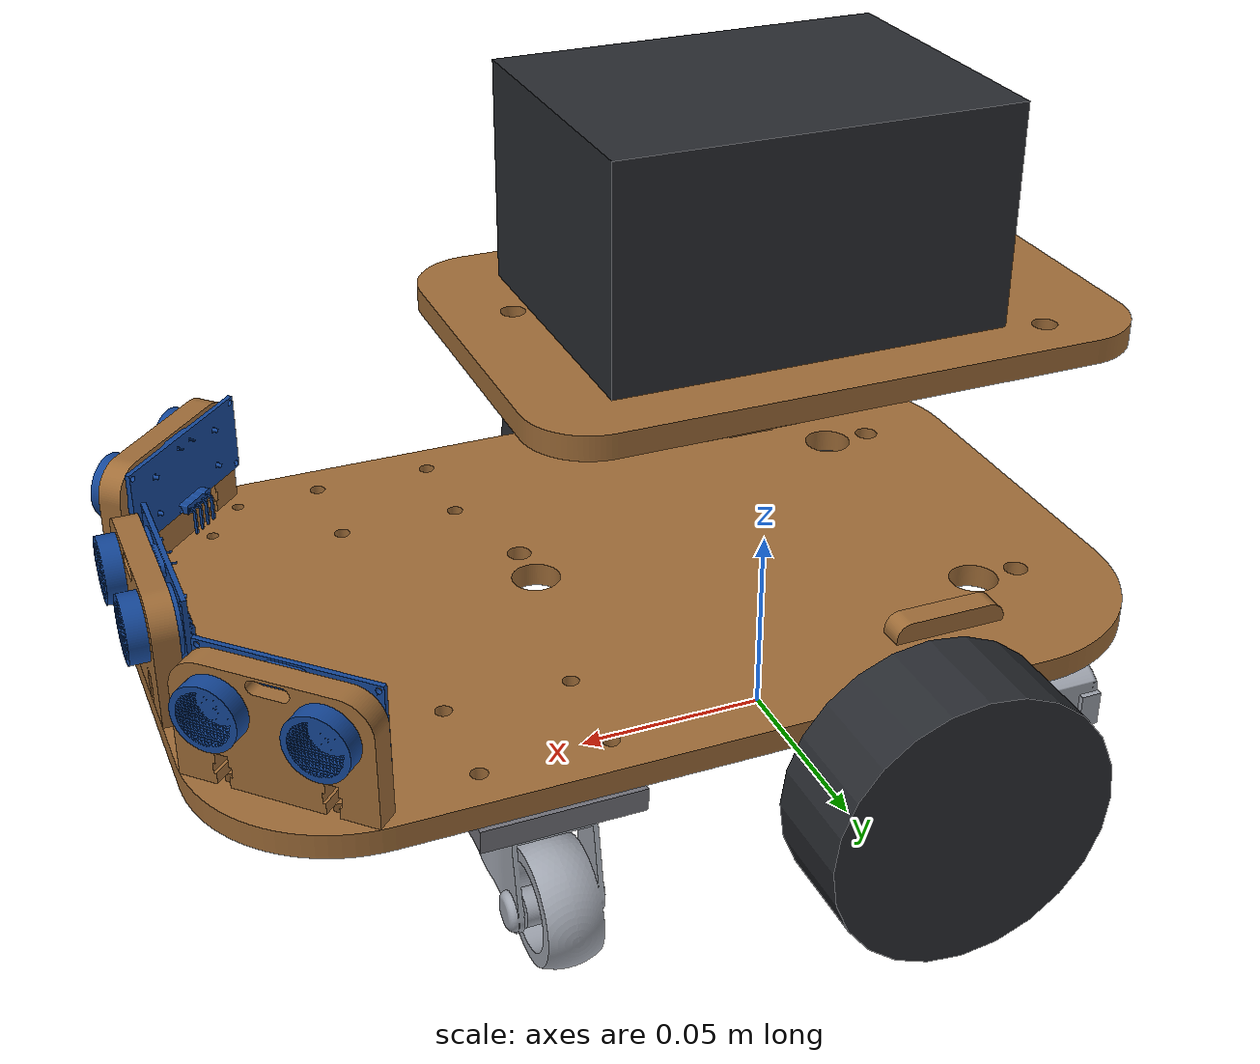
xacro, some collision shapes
<?xml version='1.0' encoding='utf-8'?>
<robot name="rm_bot" xmlns:xacro="http://www.ros.org/wiki/xacro">
  <link name="base_footprint" />
  <link name="base_link">
    <inertial>
      <origin xyz="0.042205 0 0" rpy="0 0 0" />
      <mass value="1.5" />
      <inertia ixx="0.002817" iyy="0.0066170000000000005" izz="0.009425" ixy="0" ixz="0" iyz="0" />
    </inertial>
  </link>
  <joint name="base_joint" type="fixed">
    <parent link="base_footprint" />
    <child link="base_link" />
    <origin xyz="0.000000000 0.000000000 0.048611063" rpy="0 0 0" />
  </joint>
  <link name="cad_part_0">
    <visual>
      <geometry>
        <mesh filename="package://rm_bot_description/meshes/part_00.stl" />
      </geometry>
      <material name="mat_0">
        <color rgba="0.63 0.43 0.22 1" />
      </material>
    </visual>
  </link>
  <joint name="fixed_cad_part_0" type="fixed">
    <parent link="base_link" />
    <child link="cad_part_0" />
    <origin xyz="0.000000000 0.000000000 0.000000000" rpy="0 0 0" />
  </joint>
  <link name="cad_part_1">
    <visual>
      <geometry>
        <mesh filename="package://rm_bot_description/meshes/part_01.stl" />
      </geometry>
      <material name="mat_1">
        <color rgba="0.08 0.28 0.6 1" />
      </material>
    </visual>
  </link>
  <joint name="fixed_cad_part_1" type="fixed">
    <parent link="base_link" />
    <child link="cad_part_1" />
    <origin xyz="0.000000000 0.000000000 0.000000000" rpy="0 0 0" />
  </joint>
  <link name="cad_part_2">
    <visual>
      <geometry>
        <mesh filename="package://rm_bot_description/meshes/part_02.stl" />
      </geometry>
      <material name="mat_2">
        <color rgba="0.63 0.43 0.22 1" />
      </material>
    </visual>
  </link>
  <joint name="fixed_cad_part_2" type="fixed">
    <parent link="base_link" />
    <child link="cad_part_2" />
    <origin xyz="0.000000000 0.000000000 0.000000000" rpy="0 0 0" />
  </joint>
  <link name="cad_part_3">
    <visual>
      <geometry>
        <mesh filename="package://rm_bot_description/meshes/part_03.stl" />
      </geometry>
      <material name="mat_3">
        <color rgba="0.62 0.64 0.68 1" />
      </material>
    </visual>
    <collision>
      <origin xyz="0.083804958 -0.060250002 -0.023000001" />
      <geometry>
        <sphere radius="0.02" />
      </geometry>
    </collision>
  </link>
  <joint name="fixed_cad_part_3" type="fixed">
    <parent link="base_link" />
    <child link="cad_part_3" />
    <origin xyz="0 0 -0.005611062" rpy="0 0 0" />
  </joint>
  <gazebo reference="cad_part_3">
    <mu1>0.01</mu1>
    <mu2>0.01</mu2>
  </gazebo>
  <link name="cad_part_4">
    <visual>
      <geometry>
        <mesh filename="package://rm_bot_description/meshes/part_04.stl" />
      </geometry>
      <material name="mat_4">
        <color rgba="0.08 0.28 0.6 1" />
      </material>
    </visual>
  </link>
  <joint name="fixed_cad_part_4" type="fixed">
    <parent link="base_link" />
    <child link="cad_part_4" />
    <origin xyz="0.000000000 0.000000000 0.000000000" rpy="0 0 0" />
  </joint>
  <link name="cad_part_5">
    <visual>
      <geometry>
        <mesh filename="package://rm_bot_description/meshes/part_05.stl" />
      </geometry>
      <material name="mat_5">
        <color rgba="0.63 0.43 0.22 1" />
      </material>
    </visual>
  </link>
  <joint name="fixed_cad_part_5" type="fixed">
    <parent link="base_link" />
    <child link="cad_part_5" />
    <origin xyz="0.000000000 0.000000000 0.000000000" rpy="0 0 0" />
  </joint>
  <link name="cad_part_6">
    <visual>
      <geometry>
        <mesh filename="package://rm_bot_description/meshes/part_06.stl" />
      </geometry>
      <material name="mat_6">
        <color rgba="0.63 0.43 0.22 1" />
      </material>
    </visual>
    <collision>
      <origin xyz="0.002204980 -0.000000001 0.066000000" />
      <geometry>
        <box size="0.149999999 0.100000001 0.005999997" />
      </geometry>
    </collision>
  </link>
  <joint name="fixed_cad_part_6" type="fixed">
    <parent link="base_link" />
    <child link="cad_part_6" />
    <origin xyz="0.000000000 0.000000000 0.000000000" rpy="0 0 0" />
  </joint>
  <link name="cad_part_7">
    <visual>
      <geometry>
        <mesh filename="package://rm_bot_description/meshes/part_07.stl" />
      </geometry>
      <material name="mat_7">
        <color rgba="0.62 0.64 0.68 1" />
      </material>
    </visual>
    <collision>
      <origin xyz="0.083805002 0.060250000 -0.023000001" />
      <geometry>
        <sphere radius="0.02" />
      </geometry>
    </collision>
  </link>
  <joint name="fixed_cad_part_7" type="fixed">
    <parent link="base_link" />
    <child link="cad_part_7" />
    <origin xyz="0 0 -0.005611062" rpy="0 0 0" />
  </joint>
  <gazebo reference="cad_part_7">
    <mu1>0.01</mu1>
    <mu2>0.01</mu2>
  </gazebo>
  <link name="cad_part_8">
    <visual>
      <geometry>
        <mesh filename="package://rm_bot_description/meshes/part_08.stl" />
      </geometry>
      <material name="mat_8">
        <color rgba="0.62 0.64 0.68 1" />
      </material>
    </visual>
  </link>
  <joint name="fixed_cad_part_8" type="fixed">
    <parent link="base_link" />
    <child link="cad_part_8" />
    <origin xyz="0.000000000 0.000000000 0.000000000" rpy="0 0 0" />
  </joint>
  <link name="left_wheel_link">
    <visual>
      <geometry>
        <mesh filename="package://rm_bot_description/meshes/part_09.stl" />
      </geometry>
      <material name="mat_9">
        <color rgba="0.16 0.17 0.19 1" />
      </material>
    </visual>
    <collision>
      <geometry>
        <cylinder radius="0.03446087334305048" length="0.025" />
      </geometry>
      <origin rpy="1.57079632679 0 0" />
    </collision>
    <inertial>
      <mass value="0.12" />
      <inertia ixx="5.3752071662630694e-05" iyy="9.500414332526137e-05" izz="5.3752071662630694e-05" ixy="0" ixz="0" iyz="0" />
    </inertial>
  </link>
  <joint name="left_wheel_joint" type="continuous">
    <parent link="base_link" />
    <child link="left_wheel_link" />
    <origin xyz="0.000250001 0.091800000 -0.014149810" rpy="0 0 0" />
    <axis xyz="0 1 0" />
    <limit effort="5" velocity="30" />
  </joint>
  <link name="cad_part_10">
    <visual>
      <geometry>
        <mesh filename="package://rm_bot_description/meshes/part_10.stl" />
      </geometry>
      <material name="mat_10">
        <color rgba="0.63 0.43 0.22 1" />
      </material>
    </visual>
  </link>
  <joint name="fixed_cad_part_10" type="fixed">
    <parent link="base_link" />
    <child link="cad_part_10" />
    <origin xyz="0.000000000 0.000000000 0.000000000" rpy="0 0 0" />
  </joint>
  <link name="right_wheel_link">
    <visual>
      <geometry>
        <mesh filename="package://rm_bot_description/meshes/part_11.stl" />
      </geometry>
      <material name="mat_11">
        <color rgba="0.16 0.17 0.19 1" />
      </material>
    </visual>
    <collision>
      <geometry>
        <cylinder radius="0.034460874274373055" length="0.025" />
      </geometry>
      <origin rpy="1.57079632679 0 0" />
    </collision>
    <inertial>
      <mass value="0.12" />
      <inertia ixx="5.375207423016587e-05" iyy="9.500414846033173e-05" izz="5.375207423016587e-05" ixy="0" ixz="0" iyz="0" />
    </inertial>
  </link>
  <joint name="right_wheel_joint" type="continuous">
    <parent link="base_link" />
    <child link="right_wheel_link" />
    <origin xyz="-0.000249999 -0.091800001 -0.014150189" rpy="0 0 0" />
    <axis xyz="0 1 0" />
    <limit effort="5" velocity="30" />
  </joint>
  <link name="cad_part_12">
    <visual>
      <geometry>
        <mesh filename="package://rm_bot_description/meshes/part_12.stl" />
      </geometry>
      <material name="mat_12">
        <color rgba="0.62 0.64 0.68 1" />
      </material>
    </visual>
  </link>
  <joint name="fixed_cad_part_12" type="fixed">
    <parent link="base_link" />
    <child link="cad_part_12" />
    <origin xyz="0.000000000 0.000000000 0.000000000" rpy="0 0 0" />
  </joint>
  <link name="cad_part_13">
    <visual>
      <geometry>
        <mesh filename="package://rm_bot_description/meshes/part_13.stl" />
      </geometry>
      <material name="mat_13">
        <color rgba="0.63 0.43 0.22 1" />
      </material>
    </visual>
    <collision>
      <origin xyz="0.042204979 -0.000000001 0.000000000" />
      <geometry>
        <box size="0.229999997 0.149999999 0.006000000" />
      </geometry>
    </collision>
  </link>
  <joint name="fixed_cad_part_13" type="fixed">
    <parent link="base_link" />
    <child link="cad_part_13" />
    <origin xyz="0.000000000 0.000000000 0.000000000" rpy="0 0 0" />
  </joint>
  <link name="cad_part_14">
    <visual>
      <geometry>
        <mesh filename="package://rm_bot_description/meshes/part_14.stl" />
      </geometry>
      <material name="mat_14">
        <color rgba="0.08 0.28 0.6 1" />
      </material>
    </visual>
  </link>
  <joint name="fixed_cad_part_14" type="fixed">
    <parent link="base_link" />
    <child link="cad_part_14" />
    <origin xyz="0.000000000 0.000000000 0.000000000" rpy="0 0 0" />
  </joint>
  <link name="cad_part_15">
    <visual>
      <geometry>
        <mesh filename="package://rm_bot_description/meshes/part_15.stl" />
      </geometry>
      <material name="mat_15">
        <color rgba="0.63 0.43 0.22 1" />
      </material>
    </visual>
  </link>
  <joint name="fixed_cad_part_15" type="fixed">
    <parent link="base_link" />
    <child link="cad_part_15" />
    <origin xyz="0.000000000 0.000000000 0.000000000" rpy="0 0 0" />
  </joint>
  <link name="cad_part_16">
    <visual>
      <geometry>
        <mesh filename="package://rm_bot_description/meshes/part_16.stl" />
      </geometry>
      <material name="mat_16">
        <color rgba="0.16 0.17 0.19 1" />
      </material>
    </visual>
    <collision>
      <origin xyz="0.008059205 -0.000000001 0.095750000" />
      <geometry>
        <box size="0.097488452 0.071736403 0.053500004" />
      </geometry>
    </collision>
  </link>
  <joint name="fixed_cad_part_16" type="fixed">
    <parent link="base_link" />
    <child link="cad_part_16" />
    <origin xyz="0.000000000 0.000000000 0.000000000" rpy="0 0 0" />
  </joint>
  <link name="ultrasonic_front_link" />
  <joint name="ultrasonic_front_joint" type="fixed">
    <parent link="base_link" />
    <child link="ultrasonic_front_link" />
    <origin xyz="0.157284980 0.000000000 0.020300000" rpy="0 0 0" />
  </joint>
  <link name="ultrasonic_right_link" />
  <joint name="ultrasonic_right_joint" type="fixed">
    <parent link="base_link" />
    <child link="ultrasonic_right_link" />
    <origin xyz="0.140994100 -0.058789120 0.020300000" rpy="0 0 -0.7853981633974483" />
  </joint>
  <link name="ultrasonic_left_link" />
  <joint name="ultrasonic_left_joint" type="fixed">
    <parent link="base_link" />
    <child link="ultrasonic_left_link" />
    <origin xyz="0.140994100 0.058789120 0.020300000" rpy="0 0 0.7853981633974483" />
  </joint>
  <link name="lidar_link" />
  <joint name="lidar_joint" type="fixed">
    <parent link="base_link" />
    <child link="lidar_link" />
    <origin xyz="0.008059206 0.000000000 0.112500000" rpy="0 0 0" />
  </joint>
  <xacro:property name="wheel_radius" value="0.034460874274373055" />
  <xacro:property name="wheel_separation" value="0.18360000000033586" />
  <xacro:include filename="$(find rm_bot_description)/urdf/rm_bot.gazebo.xacro" />
  <gazebo reference="lidar_link">
    <sensor name="lidar" type="gpu_lidar">
      <topic>/scan</topic>
      <gz_frame_id>lidar_link</gz_frame_id>
      <update_rate>10</update_rate>
      <always_on>true</always_on>
      <lidar>
        <scan>
          <horizontal>
            <samples>720</samples>
            <resolution>1</resolution>
            <min_angle>-3.141592653589793</min_angle>
            <max_angle>3.141592653589793</max_angle>
          </horizontal>
        </scan>
        <range>
          <min>.12</min>
          <max>12</max>
          <resolution>.01</resolution>
        </range>
      </lidar>
    </sensor>
  </gazebo>
  <gazebo reference="ultrasonic_front_link">
    <sensor name="front" type="gpu_lidar">
      <topic>/ultrasonic/front/scan</topic>
      <gz_frame_id>ultrasonic_front_link</gz_frame_id>
      <update_rate>10</update_rate>
      <always_on>true</always_on>
      <lidar>
        <scan>
          <horizontal>
            <samples>9</samples>
            <resolution>1</resolution>
            <min_angle>-0.34906585</min_angle>
            <max_angle>0.34906585</max_angle>
          </horizontal>
        </scan>
        <range>
          <min>.02</min>
          <max>4</max>
          <resolution>.01</resolution>
        </range>
      </lidar>
    </sensor>
  </gazebo>
  <gazebo reference="ultrasonic_right_link">
    <sensor name="right" type="gpu_lidar">
      <topic>/ultrasonic/right/scan</topic>
      <gz_frame_id>ultrasonic_right_link</gz_frame_id>
      <update_rate>10</update_rate>
      <always_on>true</always_on>
      <lidar>
        <scan>
          <horizontal>
            <samples>9</samples>
            <resolution>1</resolution>
            <min_angle>-1.570796327</min_angle>
            <max_angle>-0.34906585</max_angle>
          </horizontal>
        </scan>
        <range>
          <min>.02</min>
          <max>4</max>
          <resolution>.01</resolution>
        </range>
      </lidar>
    </sensor>
  </gazebo>
  <gazebo reference="ultrasonic_left_link">
    <sensor name="left" type="gpu_lidar">
      <topic>/ultrasonic/left/scan</topic>
      <gz_frame_id>ultrasonic_left_link</gz_frame_id>
      <update_rate>10</update_rate>
      <always_on>true</always_on>
      <lidar>
        <scan>
          <horizontal>
            <samples>9</samples>
            <resolution>1</resolution>
            <min_angle>0.34906585</min_angle>
            <max_angle>1.570796327</max_angle>
          </horizontal>
        </scan>
        <range>
          <min>.02</min>
          <max>4</max>
          <resolution>.01</resolution>
        </range>
      </lidar>
    </sensor>
  </gazebo>
<link name="caster_spacer_3">
 <visual><origin xyz="0.083805 -0.06025 -0.005805531"/><geometry><box size="0.038 0.032 0.005611062"/></geometry><material name="spacer_gray"><color rgba="0.45 0.45 0.48 1"/></material></visual>
 <collision><origin xyz="0.083805 -0.06025 -0.005805531"/><geometry><box size="0.038 0.032 0.005611062"/></geometry></collision>
</link><joint name="caster_spacer_joint_3" type="fixed"><parent link="base_link"/><child link="caster_spacer_3"/></joint>
<link name="caster_spacer_7">
 <visual><origin xyz="0.083805 0.06025 -0.005805531"/><geometry><box size="0.038 0.032 0.005611062"/></geometry><material name="spacer_gray"><color rgba="0.45 0.45 0.48 1"/></material></visual>
 <collision><origin xyz="0.083805 0.06025 -0.005805531"/><geometry><box size="0.038 0.032 0.005611062"/></geometry></collision>
</link><joint name="caster_spacer_joint_7" type="fixed"><parent link="base_link"/><child link="caster_spacer_7"/></joint>
</robot>
